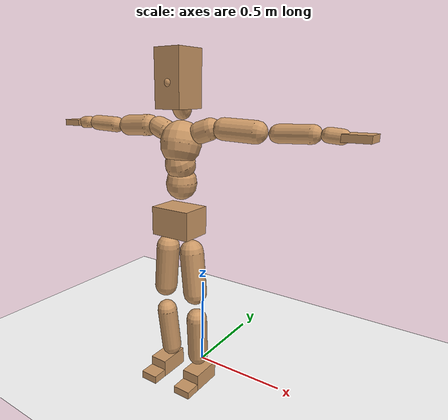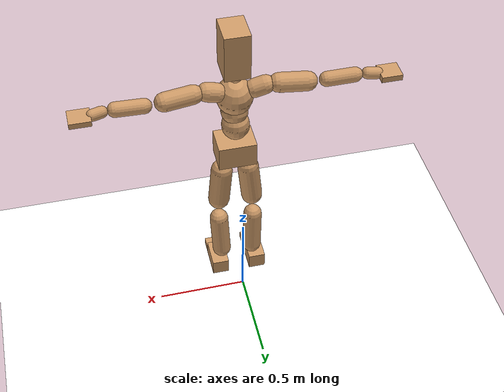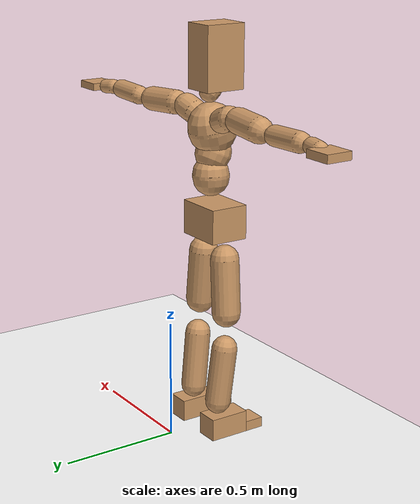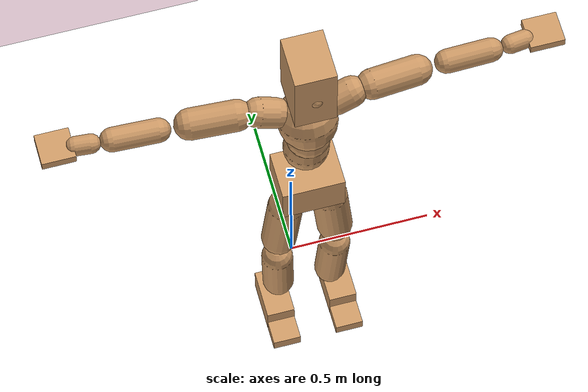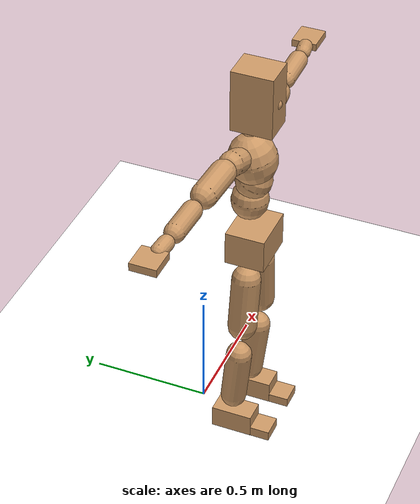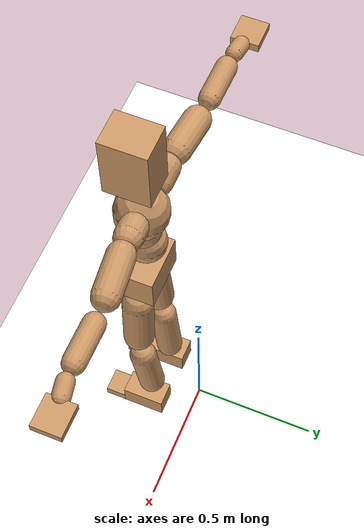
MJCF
<mujoco model="humanoid">
  <option integrator="implicitfast" />

  <visual>
    <global offwidth="1280" offheight="960" />
    <headlight active="1" ambient="0.34 0.34 0.34" diffuse="0.5 0.5 0.5" />
  </visual>

  <default>
    <joint damping="2" stiffness="2" armature="0.01" limited="true" solimplimit="0 .99 .01" />
    <geom condim="1" friction="0.7 0.005 0.0001" solimp=".99 .99 .003" solref="0.015 1" margin="0.001" rgba="0.8 0.6 .4 1" />
    <default class="smplcontact">
      <geom condim="3" friction="1. 0.005 0.0001" solref="0.015 1" solimp="0.98 0.98 0.001" priority="1" />
    </default>
    <default class="stiff_medium">
      <joint stiffness="10" />
    </default>
    <default class="stiff_medium_higher">
      <joint stiffness="50" />
    </default>
    <default class="stiff_high">
      <joint stiffness="100" />
    </default>
  </default>

  <asset>
    <texture type="skybox" builtin="gradient" rgb1="0.99 0.99 0.99" rgb2="0.608 0.828 0.892" width="100" />
    <texture builtin="flat" height="1278" mark="cross" markrgb="1 1 1" name="texgeom" random="0.01" rgb1="0.8 0.6 0.4" rgb2="0.8 0.6 0.4" type="cube" width="127" />
    <texture name="texplane" type="2d" builtin="checker" markrgb="1 1 1" rgb1="0.756 0.772 0.76" rgb2="0.6 0.6 0.6" width="100" height="100" />
    <material name="MatPlane" reflectance="0.5" texture="texplane" texrepeat="1 1" texuniform="true" />
    <material name="geom" texture="texgeom" texuniform="true" />
  </asset>

  <worldbody>
    <light name="tracking_light" pos="0 0 7" dir="0 0 -1" directional="true" cutoff="100" exponent="1" diffuse="1 1 1" specular="0.1 0.1 0.1" mode="trackcom" />
    <camera name="back" pos="0 3 2.4" xyaxes="-1 0 0 0 -1 2" mode="trackcom" />
    <camera name="side" pos="-3 0 2.4" xyaxes="0 -1 0 1 0 2" mode="trackcom" />
    <camera name="front_side" pos="-2.8 -2.8 0.8" xyaxes="0.5 -0.5 0 0.1 0.1 1" mode="trackcom" />
    <geom condim="3" name="floor" pos="0 0 0" rgba="1 1 1 1" size="100 100 .2" type="plane" material="MatPlane" />
    <body name="Pelvis" pos="-0.0018 -0.2233 0.9367" euler="90 0 0">
      <site name="Pelvis" size="0.01" />
      <freejoint name="Pelvis" />
      <geom type="box" pos="-0.0000 -0.0121 -0.0055" size="0.1069 0.0722 0.083" quat="1.0000 0.0000 0.0000 0.0000" density="3165.830099" name="Pelvis" />
      <body name="L_Hip" pos="0.0695 -0.0914 -0.0068">
        <joint name="L_Hip_x" type="hinge" pos="0 0 0" axis="1 0 0" stiffness="10.0" range="-160.0 22.92" class="stiff_medium" damping="15.0" armature="0.01"/>
        <joint name="L_Hip_y" type="hinge" pos="0 0 0" axis="0 1 0" stiffness="10.0" range="-70.0 70.0" class="stiff_medium" damping="10.000000000000004" armature="0.010000000000000009"/>
        <joint name="L_Hip_z" type="hinge" pos="0 0 0" axis="0 0 1" stiffness="10.0" range="-28.65 90.0" class="stiff_medium" damping="9.999999999999998" armature="0.009999999999999998"/>
        <geom type="capsule" density="2040.816327" fromto="0.0069 -0.075 -0.0009 0.0274 -0.3002 -0.0036" size="0.0615" name="L_Hip" />
        <body name="L_Knee" pos="0.0343 -0.3752 -0.0045">
          <joint name="L_Knee_x" type="hinge" pos="0 0 0" axis="1 0 0" range="-5.16 171.89" damping="8.000000000000004" armature="0.010000000000000009" stiffness="2.0"/>
          <joint name="L_Knee_y" type="hinge" pos="0 0 0" axis="0 1 0" range="-4.58 6.88" damping="8.000000000000002" armature="0.010000000000000005" stiffness="2.0"/>
          <joint name="L_Knee_z" type="hinge" pos="0 0 0" axis="0 0 1" range="-6.88 4.58" damping="8.000000000000002" armature="0.010000000000000005" stiffness="2.0"/>
          <geom type="capsule" density="1234.567901" fromto="-0.0027 -0.0796 -0.0087 -0.0109 -0.3184 -0.035" size="0.0541" name="L_Knee" />
          <body name="L_Ankle" pos="-0.0136 -0.398 -0.0437">
            <joint name="L_Ankle_x" type="hinge" pos="0 0 0" axis="1 0 0" range="-45.84 45.84" class="stiff_medium" damping="5.999999999999986" armature="0.009999999999999952" stiffness="10.0"/>
            <joint name="L_Ankle_y" type="hinge" pos="0 0 0" axis="0 1 0" range="-74.48 22.92" class="stiff_medium" damping="3.000000000000001" armature="0.010000000000000005" stiffness="10.0"/>
            <joint name="L_Ankle_z" type="hinge" pos="0 0 0" axis="0 0 1" range="-4.58 4.58" class="stiff_medium" damping="5.999999999999871" armature="0.009999999999999573" stiffness="10.0"/>
            <geom type="box" pos="0.0233 -0.0239 0.0242" size="0.0483 0.0464 0.085" quat="1.0000 0.0000 0.0000 0.0000" density="449.071558" name="L_Ankle" class="smplcontact" />
            <body name="L_Toe" pos="0.0264 -0.0558 0.1193">
              <joint name="L_Toe_x" type="hinge" pos="0 0 0" axis="1 0 0" range="-91.67 22.92" armature="0.009999999999998758" damping="1.9999999999998759" stiffness="2.0"/>
              <joint name="L_Toe_y" type="hinge" pos="0 0 0" axis="0 1 0" range="-4.58 4.58" armature="0.009999999999999976" damping="1.9999999999999976" stiffness="2.0"/>
              <joint name="L_Toe_z" type="hinge" pos="0 0 0" axis="0 0 1" range="-4.58 4.58" armature="0.009999999999999521" damping="1.999999999999952" stiffness="2.0"/>
              <geom type="box" pos="-0.003 0.0055 0.0248" size="0.0478 0.02 0.0496" quat="1.0000 0.0000 0.0000 0.0000" density="423.206892" name="L_Toe" class="smplcontact" />
            </body>
          </body>
        </body>
      </body>
      <body name="R_Hip" pos="-0.0677 -0.0905 -0.0043">
        <joint name="R_Hip_x" type="hinge" pos="0 0 0" axis="1 0 0" stiffness="10.0" range="-160.0 22.92" class="stiff_medium" damping="15.0" armature="0.01"/>
        <joint name="R_Hip_y" type="hinge" pos="0 0 0" axis="0 1 0" stiffness="10.0" range="-70.0 70.0" class="stiff_medium" damping="10.000000000000004" armature="0.010000000000000009"/>
        <joint name="R_Hip_z" type="hinge" pos="0 0 0" axis="0 0 1" stiffness="10.0" range="-90.0 28.65" class="stiff_medium" damping="9.999999999999998" armature="0.009999999999999998"/>
        <geom type="capsule" density="2040.816327" fromto="-0.0077 -0.0765 -0.0018 -0.0306 -0.3061 -0.0071" size="0.0606" name="R_Hip" />
        <body name="R_Knee" pos="-0.0383 -0.3826 -0.0089">
          <joint name="R_Knee_x" type="hinge" pos="0 0 0" axis="1 0 0" range="-5.16 171.89" damping="8.000000000000004" armature="0.010000000000000009" stiffness="2.0"/>
          <joint name="R_Knee_y" type="hinge" pos="0 0 0" axis="0 1 0" range="-6.88 4.58" damping="8.000000000000002" armature="0.010000000000000005" stiffness="2.0"/>
          <joint name="R_Knee_z" type="hinge" pos="0 0 0" axis="0 0 1" range="-4.58 6.88" damping="8.000000000000002" armature="0.010000000000000005" stiffness="2.0"/>
          <geom type="capsule" density="1234.567901" fromto="0.0032 -0.0797 -0.0085 0.0126 -0.3187 -0.0338" size="0.0541" name="R_Knee" />
          <body name="R_Ankle" pos="0.0158 -0.3984 -0.0423">
            <joint name="R_Ankle_x" type="hinge" pos="0 0 0" axis="1 0 0" range="-45.84 45.84" class="stiff_medium" damping="5.999999999999986" armature="0.009999999999999952" stiffness="10.0"/>
            <joint name="R_Ankle_y" type="hinge" pos="0 0 0" axis="0 1 0" range="-22.92 74.48" class="stiff_medium" damping="3.000000000000001" armature="0.010000000000000005" stiffness="10.0"/>
            <joint name="R_Ankle_z" type="hinge" pos="0 0 0" axis="0 0 1" range="-4.58 4.58" class="stiff_medium" damping="5.999999999999871" armature="0.009999999999999573" stiffness="10.0"/>
            <geom type="box" pos="-0.0212 -0.0174 0.0256" size="0.0483 0.0478 0.0865" quat="1.0000 0.0000 0.0000 0.0000" density="434.700981" name="R_Ankle" class="smplcontact" />
            <body name="R_Toe" pos="-0.0254 -0.0481 0.1233">
              <joint name="R_Toe_x" type="hinge" pos="0 0 0" axis="1 0 0" range="-91.67 22.92" armature="0.009999999999998758" damping="1.9999999999998759" stiffness="2.0"/>
              <joint name="R_Toe_y" type="hinge" pos="0 0 0" axis="0 1 0" range="-4.58 4.58" armature="0.009999999999999976" damping="1.9999999999999976" stiffness="2.0"/>
              <joint name="R_Toe_z" type="hinge" pos="0 0 0" axis="0 0 1" range="-4.58 4.58" armature="0.009999999999999521" damping="1.999999999999952" stiffness="2.0"/>
              <geom type="box" pos="0.0042 0.0045 0.0227" size="0.0479 0.0216 0.0493" quat="1.0000 0.0000 0.0000 0.0000" density="407.384095" name="R_Toe" class="smplcontact" />
            </body>
          </body>
        </body>
      </body>
      <body name="Torso" pos="-0.0025 0.109 -0.0267">
        <joint name="Torso_x" type="hinge" pos="0 0 0" axis="1 0 0" range="-25.78 57.3" class="stiff_medium" damping="17.705076836727518" armature="0.012154356467519136" stiffness="11.462547391304348"/>
        <joint name="Torso_y" type="hinge" pos="0 0 0" axis="0 1 0" range="-57.3 57.3" class="stiff_high" damping="21.610363964192025" armature="0.01008808532975007" stiffness="115.7325239130435"/>
        <joint name="Torso_z" type="hinge" pos="0 0 0" axis="0 0 1" range="-34.38 34.38" class="stiff_high" damping="22.70382040419674" armature="0.011452161778605306" stiffness="112.5253622222222"/>
        <geom type="capsule" density="2040.816327" fromto="0.0025 0.0608 0.0005 0.003 0.0743 0.0006" size="0.0769" name="Torso" />
        <body name="Spine" pos="0.0055 0.1352 0.0011">
          <joint name="Spine_x" type="hinge" pos="0 0 0" axis="1 0 0" stiffness="11.764195434782607" range="-25.78 57.3" class="stiff_medium" damping="18.527554351002824" armature="0.012968550666482795"/>
          <joint name="Spine_y" type="hinge" pos="0 0 0" axis="0 1 0" stiffness="11.722002173913042" range="-57.3 57.3" class="stiff_high" damping="8.699317843395352" armature="0.01008761795468324"/>
          <joint name="Spine_z" type="hinge" pos="0 0 0" axis="0 0 1" stiffness="23.335403478260876" range="-34.38 34.38" class="stiff_high" damping="13.835179854161925" armature="0.011392572673684813"/>
          <geom type="capsule" density="2040.816327" fromto="0.0007 0.0238 0.0114 0.0008 0.0291 0.014" size="0.0755" name="Spine" />
          <body name="Chest" pos="0.0015 0.0529 0.0254">
            <joint name="Chest_x" type="hinge" pos="0 0 0" axis="1 0 0" stiffness="12.248477608695653" range="-25.78 57.3" class="stiff_medium" damping="19.201286186604587" armature="0.013378148443277036"/>
            <joint name="Chest_y" type="hinge" pos="0 0 0" axis="0 1 0" stiffness="11.604361219512194" range="-57.3 57.3" class="stiff_high" damping="8.652552639389942" armature="0.010080621005490082"/>
            <joint name="Chest_z" type="hinge" pos="0 0 0" axis="0 0 1" stiffness="24.22878222222222" range="-34.38 34.38" class="stiff_high" damping="14.030943153528938" armature="0.011285210061548041"/>
            <geom type="capsule" density="2040.816327" fromto="-0.0009 0.0682 -0.0173 -0.001 0.0833 -0.0212" size="0.1002" name="Chest" />
            <body name="Neck" pos="-0.0028 0.2139 -0.0429">
              <joint name="Neck_x" type="hinge" pos="0 0 0" axis="1 0 0" range="-28.65 57.3" class="stiff_medium_higher" damping="15.466604435927225" armature="0.01611478219585472" stiffness="74.2224902173913"/>
              <joint name="Neck_y" type="hinge" pos="0 0 0" axis="0 1 0" range="-40.11 40.11" class="stiff_medium_higher" damping="16.394529800966865" armature="0.01803031927823758" stiffness="74.53573152173914"/>
              <joint name="Neck_z" type="hinge" pos="0 0 0" axis="0 0 1" range="-40.11 40.11" class="stiff_medium_higher" damping="15.560711690532925" armature="0.016095738935980625" stiffness="75.2173445652174"/>
              <geom type="capsule" density="1000" fromto="0.001 0.013 0.0103 0.0041 0.052 0.0411" size="0.0436" name="Neck" />
              <body name="Head" pos="0.0052 0.065 0.0513">
                <joint name="Head_x" type="hinge" pos="0 0 0" axis="1 0 0" range="-28.65 57.3" class="stiff_medium_higher" damping="3.2545611266266454" armature="0.01741130620029473" stiffness="76.04375"/>
                <joint name="Head_y" type="hinge" pos="0 0 0" axis="0 1 0" range="-40.11 40.11" class="stiff_medium_higher" damping="3.4782957981698597" armature="0.019887468824798388" stiffness="76.04375"/>
                <joint name="Head_z" type="hinge" pos="0 0 0" axis="0 0 1" range="-40.11 40.11" class="stiff_medium_higher" damping="3.243082048817527" armature="0.017288700871804865" stiffness="76.04375"/>
                <geom type="box" pos="-0.0042 0.0876 -0.0116" size="0.06969 0.13271 0.0874" quat="1.0000 0.0000 0.0000 0.0000" density="1018.069894" name="Head" />
                <geom type="capsule" name="nose" size="0.023 0.0115" pos="0 0.07 0.05" quat="1 0 0 0" mass="0" contype="0" conaffinity="0" />
              </body>
            </body>
            <body name="L_Thorax" pos="0.0788 0.1217 -0.0341">
              <joint name="L_Thorax_x" type="hinge" pos="0 0 0" axis="1 0 0" range="-10.89 4.58" class="stiff_medium_higher" damping="19.99999999999997" armature="0.00999999999999997" stiffness="50.0"/>
              <joint name="L_Thorax_y" type="hinge" pos="0 0 0" axis="0 1 0" range="-28.65 17.19" class="stiff_medium_higher" damping="20.0" armature="0.010000000000000002" stiffness="50.0"/>
              <joint name="L_Thorax_z" type="hinge" pos="0 0 0" axis="0 0 1" range="-31.51 40.11" class="stiff_medium_higher" damping="19.999999999999996" armature="0.009999999999999998" stiffness="50.0"/>
              <geom type="capsule" density="1000" fromto="0.0182 0.0061 -0.0018 0.0728 0.0244 -0.0071" size="0.0521" name="L_Thorax" />
              <body name="L_Shoulder" pos="0.091 0.0305 -0.0089">
                <joint name="L_Shoulder_x" type="hinge" pos="0 0 0" axis="1 0 0" range="-97.4 97.4" class="stiff_medium" damping="5.999999999999992" armature="0.009999999999999974" stiffness="10.0"/>
                <joint name="L_Shoulder_y" type="hinge" pos="0 0 0" axis="0 1 0" range="-108.86 80.21" class="stiff_medium" damping="6.0" armature="0.01" stiffness="10.0"/>
                <joint name="L_Shoulder_z" type="hinge" pos="0 0 0" axis="0 0 1" range="-97.4 85.94" class="stiff_medium" damping="6.000000000000002" armature="0.010000000000000005" stiffness="10.0"/>
                <geom type="capsule" density="1000" fromto="0.0519 -0.0026 -0.0055 0.2077 -0.0102 -0.022" size="0.0517" name="L_Shoulder" />
                <body name="L_Elbow" pos="0.2596 -0.0128 -0.0275">
                  <joint name="L_Elbow_x" type="hinge" pos="0 0 0" axis="1 0 0" range="-17.19 4.58" damping="4.99999999999993" armature="0.009999999999999721" stiffness="2.0"/>
                  <joint name="L_Elbow_y" type="hinge" pos="0 0 0" axis="0 1 0" range="-180.0 17.19" damping="5.0000000000000036" armature="0.010000000000000014" stiffness="2.0"/>
                  <joint name="L_Elbow_z" type="hinge" pos="0 0 0" axis="0 0 1" range="-100.84 4.58" damping="5.000000000000001" armature="0.010000000000000005" stiffness="2.0"/>
                  <geom type="capsule" density="1000" fromto="0.0498 0.0018 -0.0002 0.1994 0.0072 -0.0009" size="0.0405" name="L_Elbow" />
                  <body name="L_Wrist" pos="0.2492 0.009 -0.0012">
                    <joint name="L_Wrist_x" type="hinge" pos="0 0 0" axis="1 0 0" range="-180.0 22.92" armature="0.01000000000000015" damping="2.0000000000000147" stiffness="2.0"/>
                    <joint name="L_Wrist_y" type="hinge" pos="0 0 0" axis="0 1 0" range="-17.19 17.19" armature="0.010000000000000026" damping="2.0000000000000027" stiffness="2.0"/>
                    <joint name="L_Wrist_z" type="hinge" pos="0 0 0" axis="0 0 1" range="-22.92 22.92" armature="0.010000000000000023" damping="2.000000000000002" stiffness="2.0"/>
                    <geom type="capsule" density="1000" fromto="0.0168 -0.0016 -0.003 0.0672 -0.0065 -0.012" size="0.0318" name="L_Wrist" class="smplcontact" />
                    <body name="L_Hand" pos="0.084 -0.0082 -0.0149">
                      <joint name="L_Hand_x" type="hinge" pos="0 0 0" axis="1 0 0" range="-17.19 17.19" armature="0.009999999999999825" damping="1.9999999999999825" stiffness="2.0"/>
                      <joint name="L_Hand_y" type="hinge" pos="0 0 0" axis="0 1 0" range="-51.57 51.57" armature="0.010000000000000196" damping="2.0000000000000195" stiffness="2.0"/>
                      <joint name="L_Hand_z" type="hinge" pos="0 0 0" axis="0 0 1" range="-91.67 91.67" armature="0.010000000000000182" damping="2.000000000000018" stiffness="2.0"/>
                      <geom type="box" pos="0.0493 0.001 -0.0058" size="0.0585 0.0158 0.0538" quat="1.0000 0.0000 0.0000 0.0000" density="400.552564" name="L_Hand" class="smplcontact" />
                    </body>
                  </body>
                </body>
              </body>
            </body>
            <body name="R_Thorax" pos="-0.0818 0.1188 -0.0386">
              <joint name="R_Thorax_x" type="hinge" pos="0 0 0" axis="1 0 0" range="-10.89 4.58" class="stiff_medium_higher" damping="19.99999999999997" armature="0.00999999999999997" stiffness="50.0"/>
              <joint name="R_Thorax_y" type="hinge" pos="0 0 0" axis="0 1 0" range="-17.19 28.65" class="stiff_medium_higher" damping="20.0" armature="0.010000000000000002" stiffness="50.0"/>
              <joint name="R_Thorax_z" type="hinge" pos="0 0 0" axis="0 0 1" range="-40.11 31.51" class="stiff_medium_higher" damping="19.999999999999996" armature="0.009999999999999998" stiffness="50.0"/>
              <geom type="capsule" density="1000" fromto="-0.0192 0.0065 -0.0018 -0.0768 0.026 -0.0073" size="0.0511" name="R_Thorax" />
              <body name="R_Shoulder" pos="-0.096 0.0326 -0.0091">
                <joint name="R_Shoulder_x" type="hinge" pos="0 0 0" axis="1 0 0" range="-97.4 97.4" class="stiff_medium" damping="5.999999999999992" armature="0.009999999999999974" stiffness="10.0"/>
                <joint name="R_Shoulder_y" type="hinge" pos="0 0 0" axis="0 1 0" range="-80.21 108.86" class="stiff_medium" damping="6.0" armature="0.01" stiffness="10.0"/>
                <joint name="R_Shoulder_z" type="hinge" pos="0 0 0" axis="0 0 1" range="-85.94 97.4" class="stiff_medium" damping="6.000000000000002" armature="0.010000000000000005" stiffness="10.0"/>
                <geom type="capsule" density="1000" fromto="-0.0507 -0.0027 -0.0043 -0.203 -0.0107 -0.0171" size="0.0531" name="R_Shoulder" />
                <body name="R_Elbow" pos="-0.2537 -0.0133 -0.0214">
                  <joint name="R_Elbow_x" type="hinge" pos="0 0 0" axis="1 0 0" range="-17.19 4.58" damping="4.99999999999993" armature="0.009999999999999721" stiffness="2.0"/>
                  <joint name="R_Elbow_y" type="hinge" pos="0 0 0" axis="0 1 0" range="-17.19 180.0" damping="5.0000000000000036" armature="0.010000000000000014" stiffness="2.0"/>
                  <joint name="R_Elbow_z" type="hinge" pos="0 0 0" axis="0 0 1" range="-4.58 100.84" damping="5.000000000000001" armature="0.010000000000000005" stiffness="2.0"/>
                  <geom type="capsule" density="1000" fromto="-0.0511 0.0016 -0.0011 -0.2042 0.0062 -0.0044" size="0.0408" name="R_Elbow" />
                  <body name="R_Wrist" pos="-0.2553 0.0078 -0.0056">
                    <joint name="R_Wrist_x" type="hinge" pos="0 0 0" axis="1 0 0" range="-180.0 22.92" armature="0.01000000000000015" damping="2.0000000000000147" stiffness="2.0"/>
                    <joint name="R_Wrist_y" type="hinge" pos="0 0 0" axis="0 1 0" range="-17.19 17.19" armature="0.010000000000000026" damping="2.0000000000000027" stiffness="2.0"/>
                    <joint name="R_Wrist_z" type="hinge" pos="0 0 0" axis="0 0 1" range="-22.92 22.92" armature="0.010000000000000023" damping="2.000000000000002" stiffness="2.0"/>
                    <geom type="capsule" density="1000" fromto="-0.0169 -0.0012 -0.0021 -0.0677 -0.0049 -0.0083" size="0.0326" name="R_Wrist" class="smplcontact" />
                    <body name="R_Hand" pos="-0.0846 -0.0061 -0.0103">
                      <joint name="R_Hand_x" type="hinge" pos="0 0 0" axis="1 0 0" range="-17.19 17.19" armature="0.009999999999999825" damping="1.9999999999999825" stiffness="2.0"/>
                      <joint name="R_Hand_y" type="hinge" pos="0 0 0" axis="0 1 0" range="-51.57 51.57" armature="0.010000000000000196" damping="2.0000000000000195" stiffness="2.0"/>
                      <joint name="R_Hand_z" type="hinge" pos="0 0 0" axis="0 0 1" range="-91.67 91.67" armature="0.010000000000000182" damping="2.000000000000018" stiffness="2.0"/>
                      <geom type="box" pos="-0.0462 -0.0009 -0.0079" size="0.0569 0.0164 0.0546" quat="1.0000 0.0000 0.0000 0.0000" density="403.679611" name="R_Hand" class="smplcontact" />
                    </body>
                  </body>
                </body>
              </body>
            </body>
          </body>
        </body>
      </body>
    </body>
  </worldbody>
  <actuator>
    <general name="L_Hip_x" joint="L_Hip_x" biastype="affine" gainprm="287.33006409732246" biasprm="-215.3247604770444 -180.0 -2.0" ctrllimited="true" ctrlrange="-1 1" forcerange="-360.0 360.0" />
    <general name="L_Hip_y" joint="L_Hip_y" biastype="affine" gainprm="219.9114857512855" biasprm="0.0 -180.0 -2.000000000000001" ctrllimited="true" ctrlrange="-1 1" forcerange="-360.0 360.0" />
    <general name="L_Hip_z" joint="L_Hip_z" biastype="affine" gainprm="186.3749841742145" biasprm="96.3683546488669 -180.0 -1.9999999999999998" ctrllimited="true" ctrlrange="-1 1" forcerange="-360.0 360.0" />
    <general name="L_Knee_x" joint="L_Knee_x" biastype="affine" gainprm="278.10948965903646" biasprm="261.8988715665131 -180.0 -2.000000000000001" ctrllimited="true" ctrlrange="-1 1" forcerange="-360.0 360.0" />
    <general name="L_Knee_y" joint="L_Knee_y" biastype="affine" gainprm="18.001325905069514" biasprm="3.612831551628262 -180.0 -2.0000000000000004" ctrllimited="true" ctrlrange="-1 1" forcerange="-360.0 360.0" />
    <general name="L_Knee_z" joint="L_Knee_z" biastype="affine" gainprm="18.001325905069514" biasprm="-3.612831551628262 -180.0 -2.0000000000000004" ctrllimited="true" ctrlrange="-1 1" forcerange="-360.0 360.0" />
    <general name="L_Ankle_x" joint="L_Ankle_x" biastype="affine" gainprm="72.00530362027807" biasprm="0.0 -90.0 -1.9999999999999951" ctrllimited="true" ctrlrange="-1 1" forcerange="-180.0 180.0" />
    <general name="L_Ankle_y" joint="L_Ankle_y" biastype="affine" gainprm="76.49778111491148" biasprm="-40.49512930477244 -90.0 -2.0000000000000004" ctrllimited="true" ctrlrange="-1 1" forcerange="-180.0 180.0" />
    <general name="L_Ankle_z" joint="L_Ankle_z" biastype="affine" gainprm="7.1942471767206255" biasprm="0.0 -90.0 -1.9999999999999571" ctrllimited="true" ctrlrange="-1 1" forcerange="-180.0 180.0" />
    <general name="L_Toe_x" joint="L_Toe_x" biastype="affine" gainprm="71.99902043497087" biasprm="-43.19689898685965 -72.0 -0.7999999999999504" ctrllimited="true" ctrlrange="-1 1" forcerange="-144.0 144.0" />
    <general name="L_Toe_y" joint="L_Toe_y" biastype="affine" gainprm="5.755397741376501" biasprm="0.0 -72.0 -0.799999999999999" ctrllimited="true" ctrlrange="-1 1" forcerange="-144.0 144.0" />
    <general name="L_Toe_z" joint="L_Toe_z" biastype="affine" gainprm="5.755397741376501" biasprm="0.0 -72.0 -0.7999999999999808" ctrllimited="true" ctrlrange="-1 1" forcerange="-144.0 144.0" />
    <general name="R_Hip_x" joint="R_Hip_x" biastype="affine" gainprm="287.33006409732246" biasprm="-215.3247604770444 -180.0 -2.0" ctrllimited="true" ctrlrange="-1 1" forcerange="-360.0 360.0" />
    <general name="R_Hip_y" joint="R_Hip_y" biastype="affine" gainprm="219.9114857512855" biasprm="0.0 -180.0 -2.000000000000001" ctrllimited="true" ctrlrange="-1 1" forcerange="-360.0 360.0" />
    <general name="R_Hip_z" joint="R_Hip_z" biastype="affine" gainprm="186.3749841742145" biasprm="-96.3683546488669 -180.0 -1.9999999999999998" ctrllimited="true" ctrlrange="-1 1" forcerange="-360.0 360.0" />
    <general name="R_Knee_x" joint="R_Knee_x" biastype="affine" gainprm="278.10948965903646" biasprm="261.8988715665131 -180.0 -2.000000000000001" ctrllimited="true" ctrlrange="-1 1" forcerange="-360.0 360.0" />
    <general name="R_Knee_y" joint="R_Knee_y" biastype="affine" gainprm="18.001325905069514" biasprm="-3.612831551628262 -180.0 -2.0000000000000004" ctrllimited="true" ctrlrange="-1 1" forcerange="-360.0 360.0" />
    <general name="R_Knee_z" joint="R_Knee_z" biastype="affine" gainprm="18.001325905069514" biasprm="3.612831551628262 -180.0 -2.0000000000000004" ctrllimited="true" ctrlrange="-1 1" forcerange="-360.0 360.0" />
    <general name="R_Ankle_x" joint="R_Ankle_x" biastype="affine" gainprm="72.00530362027807" biasprm="0.0 -90.0 -1.9999999999999951" ctrllimited="true" ctrlrange="-1 1" forcerange="-180.0 180.0" />
    <general name="R_Ankle_y" joint="R_Ankle_y" biastype="affine" gainprm="76.49778111491148" biasprm="40.49512930477244 -90.0 -2.0000000000000004" ctrllimited="true" ctrlrange="-1 1" forcerange="-180.0 180.0" />
    <general name="R_Ankle_z" joint="R_Ankle_z" biastype="affine" gainprm="7.1942471767206255" biasprm="0.0 -90.0 -1.9999999999999571" ctrllimited="true" ctrlrange="-1 1" forcerange="-180.0 180.0" />
    <general name="R_Toe_x" joint="R_Toe_x" biastype="affine" gainprm="71.99902043497087" biasprm="-43.19689898685965 -72.0 -0.7999999999999504" ctrllimited="true" ctrlrange="-1 1" forcerange="-144.0 144.0" />
    <general name="R_Toe_y" joint="R_Toe_y" biastype="affine" gainprm="5.755397741376501" biasprm="0.0 -72.0 -0.799999999999999" ctrllimited="true" ctrlrange="-1 1" forcerange="-144.0 144.0" />
    <general name="R_Toe_z" joint="R_Toe_z" biastype="affine" gainprm="5.755397741376501" biasprm="0.0 -72.0 -0.7999999999999808" ctrllimited="true" ctrlrange="-1 1" forcerange="-144.0 144.0" />
    <general name="Torso_x" joint="Torso_x" biastype="affine" gainprm="199.4510126985095" biasprm="75.67038902572241 -275.10113739130435 -4.721353823127338" ctrllimited="true" ctrlrange="-1 1" forcerange="-412.6517060869565 412.6517060869565" />
    <general name="Torso_y" joint="Torso_y" biastype="affine" gainprm="277.77851743665957" biasprm="0.0 -277.75805739130436 -4.322072792838405" ctrllimited="true" ctrlrange="-1 1" forcerange="-416.6370860869566 416.6370860869566" />
    <general name="Torso_z" joint="Torso_z" biastype="affine" gainprm="162.04845743585756" biasprm="0.0 -270.0608693333333 -4.540764080839348" ctrllimited="true" ctrlrange="-1 1" forcerange="-405.0913039999999 405.0913039999999" />
    <general name="Spine_x" joint="Spine_x" biastype="affine" gainprm="204.69975939471982" biasprm="77.6617286485504 -282.3406904347826 -4.940681160267419" ctrllimited="true" ctrlrange="-1 1" forcerange="-423.51103565217386 423.51103565217386" />
    <general name="Spine_y" joint="Spine_y" biastype="affine" gainprm="281.348775190056" biasprm="0.0 -281.328052173913 -4.349658921697676" ctrllimited="true" ctrlrange="-1 1" forcerange="-421.9920782608695 421.9920782608695" />
    <general name="Spine_z" joint="Spine_z" biastype="affine" gainprm="168.02728125538673" biasprm="0.0 -280.0248417391305 -4.611726618053975" ctrllimited="true" ctrlrange="-1 1" forcerange="-420.03726260869576 420.03726260869576" />
    <general name="Chest_x" joint="Chest_x" biastype="affine" gainprm="213.12638279015005" biasprm="80.85873357661926 -293.9634626086957 -5.120342983094557" ctrllimited="true" ctrlrange="-1 1" forcerange="-440.9451939130435 440.9451939130435" />
    <general name="Chest_y" joint="Chest_y" biastype="affine" gainprm="278.52518431011856" biasprm="0.0 -278.5046692682927 -4.326276319694971" ctrllimited="true" ctrlrange="-1 1" forcerange="-417.75700390243895 417.75700390243895" />
    <general name="Chest_z" joint="Chest_z" biastype="affine" gainprm="174.46008202607067" biasprm="0.0 -290.74538666666666 -4.676981051176313" ctrllimited="true" ctrlrange="-1 1" forcerange="-436.11808 436.11808" />
    <general name="Neck_x" joint="Neck_x" biastype="affine" gainprm="40.083097076672836" biasprm="13.361032358890947 -53.440192956521734 -1.237328354874178" ctrllimited="true" ctrlrange="-1 1" forcerange="-106.88038591304347 106.88038591304347" />
    <general name="Neck_y" joint="Neck_y" biastype="affine" gainprm="37.568775851476495" biasprm="0.0 -53.665726695652175 -1.3115623840773494" ctrllimited="true" ctrlrange="-1 1" forcerange="-107.33145339130435 107.33145339130435" />
    <general name="Neck_z" joint="Neck_z" biastype="affine" gainprm="37.912334130506856" biasprm="0.0 -54.15648808695653 -1.244856935242634" ctrllimited="true" ctrlrange="-1 1" forcerange="-108.31297617391306 108.31297617391306" />
    <general name="Head_x" joint="Head_x" biastype="affine" gainprm="27.377766535872595" biasprm="9.125922178624199 -36.501 -1.3018244506506582" ctrllimited="true" ctrlrange="-1 1" forcerange="-73.002 73.002" />
    <general name="Head_y" joint="Head_y" biastype="affine" gainprm="25.552582100147756" biasprm="0.0 -36.501 -1.391318319267944" ctrllimited="true" ctrlrange="-1 1" forcerange="-73.002 73.002" />
    <general name="Head_z" joint="Head_z" biastype="affine" gainprm="25.552582100147756" biasprm="0.0 -36.501 -1.2972328195270109" ctrllimited="true" ctrlrange="-1 1" forcerange="-73.002 73.002" />
    <general name="L_Thorax_x" joint="L_Thorax_x" biastype="affine" gainprm="16.200146117011364" biasprm="-6.6078165480505335 -120.0 -1.5999999999999979" ctrllimited="true" ctrlrange="-1 1" forcerange="-240.0 240.0" />
    <general name="L_Thorax_y" joint="L_Thorax_y" biastype="affine" gainprm="48.00353574685204" biasprm="-12.00088393671301 -120.0 -1.6" ctrllimited="true" ctrlrange="-1 1" forcerange="-240.0 240.0" />
    <general name="L_Thorax_z" joint="L_Thorax_z" biastype="affine" gainprm="75.00028861670033" biasprm="9.00589894029074 -120.0 -1.5999999999999999" ctrllimited="true" ctrlrange="-1 1" forcerange="-240.0 240.0" />
    <general name="L_Shoulder_x" joint="L_Shoulder_x" biastype="affine" gainprm="81.5976331892389" biasprm="0.0 -48.0 -1.5999999999999979" ctrllimited="true" ctrlrange="-1 1" forcerange="-96.0 96.0" />
    <general name="L_Shoulder_y" joint="L_Shoulder_y" biastype="affine" gainprm="79.19745640189629" biasprm="-12.00088393671301 -48.0 -1.6" ctrllimited="true" ctrlrange="-1 1" forcerange="-96.0 96.0" />
    <general name="L_Shoulder_z" joint="L_Shoulder_z" biastype="affine" gainprm="76.79727961455369" biasprm="-4.800353574685214 -48.0 -1.6000000000000005" ctrllimited="true" ctrlrange="-1 1" forcerange="-96.0 96.0" />
    <general name="L_Elbow_x" joint="L_Elbow_x" biastype="affine" gainprm="13.67849441372996" biasprm="-7.923096672353461 -72.0 -0.7999999999999888" ctrllimited="true" ctrlrange="-1 1" forcerange="-144.0 144.0" />
    <general name="L_Elbow_y" joint="L_Elbow_y" biastype="affine" gainprm="123.89813107227425" biasprm="-102.29653998619085 -72.0 -0.8000000000000006" ctrllimited="true" ctrlrange="-1 1" forcerange="-144.0 144.0" />
    <general name="L_Elbow_z" joint="L_Elbow_z" biastype="affine" gainprm="66.23733950828719" biasprm="-60.4819417669107 -72.0 -0.8000000000000003" ctrllimited="true" ctrlrange="-1 1" forcerange="-144.0 144.0" />
    <general name="L_Wrist_x" joint="L_Wrist_x" biastype="affine" gainprm="21.24973270888136" biasprm="-16.449379134196157 -12.0 -0.8000000000000059" ctrllimited="true" ctrlrange="-1 1" forcerange="-24.0 24.0" />
    <general name="L_Wrist_y" joint="L_Wrist_y" biastype="affine" gainprm="3.6002651810139037" biasprm="0.0 -12.0 -0.8000000000000012" ctrllimited="true" ctrlrange="-1 1" forcerange="-24.0 24.0" />
    <general name="L_Wrist_z" joint="L_Wrist_z" biastype="affine" gainprm="4.800353574685205" biasprm="0.0 -12.0 -0.8000000000000009" ctrllimited="true" ctrlrange="-1 1" forcerange="-24.0 24.0" />
    <general name="L_Hand_x" joint="L_Hand_x" biastype="affine" gainprm="3.6002651810139037" biasprm="0.0 -12.0 -0.799999999999993" ctrllimited="true" ctrlrange="-1 1" forcerange="-24.0 24.0" />
    <general name="L_Hand_y" joint="L_Hand_y" biastype="affine" gainprm="10.800795543041708" biasprm="0.0 -12.0 -0.8000000000000078" ctrllimited="true" ctrlrange="-1 1" forcerange="-24.0 24.0" />
    <general name="L_Hand_z" joint="L_Hand_z" biastype="affine" gainprm="19.199319903638422" biasprm="0.0 -12.0 -0.8000000000000074" ctrllimited="true" ctrlrange="-1 1" forcerange="-24.0 24.0" />
    <general name="R_Thorax_x" joint="R_Thorax_x" biastype="affine" gainprm="16.200146117011364" biasprm="-6.6078165480505335 -120.0 -1.5999999999999979" ctrllimited="true" ctrlrange="-1 1" forcerange="-240.0 240.0" />
    <general name="R_Thorax_y" joint="R_Thorax_y" biastype="affine" gainprm="48.00353574685204" biasprm="12.000883936713002 -120.0 -1.6" ctrllimited="true" ctrlrange="-1 1" forcerange="-240.0 240.0" />
    <general name="R_Thorax_z" joint="R_Thorax_z" biastype="affine" gainprm="75.00028861670033" biasprm="-9.00589894029074 -120.0 -1.5999999999999999" ctrllimited="true" ctrlrange="-1 1" forcerange="-240.0 240.0" />
    <general name="R_Shoulder_x" joint="R_Shoulder_x" biastype="affine" gainprm="81.5976331892389" biasprm="0.0 -48.0 -1.5999999999999979" ctrllimited="true" ctrlrange="-1 1" forcerange="-96.0 96.0" />
    <general name="R_Shoulder_y" joint="R_Shoulder_y" biastype="affine" gainprm="79.19745640189629" biasprm="12.00088393671301 -48.0 -1.6" ctrllimited="true" ctrlrange="-1 1" forcerange="-96.0 96.0" />
    <general name="R_Shoulder_z" joint="R_Shoulder_z" biastype="affine" gainprm="76.79727961455369" biasprm="4.800353574685204 -48.0 -1.6000000000000005" ctrllimited="true" ctrlrange="-1 1" forcerange="-96.0 96.0" />
    <general name="R_Elbow_x" joint="R_Elbow_x" biastype="affine" gainprm="13.67849441372996" biasprm="-7.923096672353461 -72.0 -0.7999999999999888" ctrllimited="true" ctrlrange="-1 1" forcerange="-144.0 144.0" />
    <general name="R_Elbow_y" joint="R_Elbow_y" biastype="affine" gainprm="123.89813107227425" biasprm="102.29653998619085 -72.0 -0.8000000000000006" ctrllimited="true" ctrlrange="-1 1" forcerange="-144.0 144.0" />
    <general name="R_Elbow_z" joint="R_Elbow_z" biastype="affine" gainprm="66.23733950828719" biasprm="60.481941766910694 -72.0 -0.8000000000000003" ctrllimited="true" ctrlrange="-1 1" forcerange="-144.0 144.0" />
    <general name="R_Wrist_x" joint="R_Wrist_x" biastype="affine" gainprm="21.24973270888136" biasprm="-16.449379134196157 -12.0 -0.8000000000000059" ctrllimited="true" ctrlrange="-1 1" forcerange="-24.0 24.0" />
    <general name="R_Wrist_y" joint="R_Wrist_y" biastype="affine" gainprm="3.6002651810139037" biasprm="0.0 -12.0 -0.8000000000000012" ctrllimited="true" ctrlrange="-1 1" forcerange="-24.0 24.0" />
    <general name="R_Wrist_z" joint="R_Wrist_z" biastype="affine" gainprm="4.800353574685205" biasprm="0.0 -12.0 -0.8000000000000009" ctrllimited="true" ctrlrange="-1 1" forcerange="-24.0 24.0" />
    <general name="R_Hand_x" joint="R_Hand_x" biastype="affine" gainprm="3.6002651810139037" biasprm="0.0 -12.0 -0.799999999999993" ctrllimited="true" ctrlrange="-1 1" forcerange="-24.0 24.0" />
    <general name="R_Hand_y" joint="R_Hand_y" biastype="affine" gainprm="10.800795543041708" biasprm="0.0 -12.0 -0.8000000000000078" ctrllimited="true" ctrlrange="-1 1" forcerange="-24.0 24.0" />
    <general name="R_Hand_z" joint="R_Hand_z" biastype="affine" gainprm="19.199319903638422" biasprm="0.0 -12.0 -0.8000000000000074" ctrllimited="true" ctrlrange="-1 1" forcerange="-24.0 24.0" />
  </actuator>
  <contact>
    <exclude body1="Torso" body2="Chest" />
    <exclude body1="Head" body2="Chest" />
    <exclude body1="R_Knee" body2="R_Toe" />
    <exclude body1="R_Knee" body2="L_Ankle" />
    <exclude body1="R_Knee" body2="L_Toe" />
    <exclude body1="L_Knee" body2="L_Toe" />
    <exclude body1="L_Knee" body2="R_Ankle" />
    <exclude body1="L_Knee" body2="R_Toe" />
    <exclude body1="L_Shoulder" body2="Chest" />
    <exclude body1="R_Shoulder" body2="Chest" />
  </contact>
  <sensor>
    <framelinvel name="sensor_Pelvis_framelinvel" objtype="xbody" objname="Pelvis" />
    <framelinvel name="sensor_L_Hip_framelinvel" objtype="xbody" objname="L_Hip" />
    <framelinvel name="sensor_L_Knee_framelinvel" objtype="xbody" objname="L_Knee" />
    <framelinvel name="sensor_L_Ankle_framelinvel" objtype="xbody" objname="L_Ankle" />
    <framelinvel name="sensor_L_Toe_framelinvel" objtype="xbody" objname="L_Toe" />
    <framelinvel name="sensor_R_Hip_framelinvel" objtype="xbody" objname="R_Hip" />
    <framelinvel name="sensor_R_Knee_framelinvel" objtype="xbody" objname="R_Knee" />
    <framelinvel name="sensor_R_Ankle_framelinvel" objtype="xbody" objname="R_Ankle" />
    <framelinvel name="sensor_R_Toe_framelinvel" objtype="xbody" objname="R_Toe" />
    <framelinvel name="sensor_Torso_framelinvel" objtype="xbody" objname="Torso" />
    <framelinvel name="sensor_Spine_framelinvel" objtype="xbody" objname="Spine" />
    <framelinvel name="sensor_Chest_framelinvel" objtype="xbody" objname="Chest" />
    <framelinvel name="sensor_Neck_framelinvel" objtype="xbody" objname="Neck" />
    <framelinvel name="sensor_Head_framelinvel" objtype="xbody" objname="Head" />
    <framelinvel name="sensor_L_Thorax_framelinvel" objtype="xbody" objname="L_Thorax" />
    <framelinvel name="sensor_L_Shoulder_framelinvel" objtype="xbody" objname="L_Shoulder" />
    <framelinvel name="sensor_L_Elbow_framelinvel" objtype="xbody" objname="L_Elbow" />
    <framelinvel name="sensor_L_Wrist_framelinvel" objtype="xbody" objname="L_Wrist" />
    <framelinvel name="sensor_L_Hand_framelinvel" objtype="xbody" objname="L_Hand" />
    <framelinvel name="sensor_R_Thorax_framelinvel" objtype="xbody" objname="R_Thorax" />
    <framelinvel name="sensor_R_Shoulder_framelinvel" objtype="xbody" objname="R_Shoulder" />
    <framelinvel name="sensor_R_Elbow_framelinvel" objtype="xbody" objname="R_Elbow" />
    <framelinvel name="sensor_R_Wrist_framelinvel" objtype="xbody" objname="R_Wrist" />
    <framelinvel name="sensor_R_Hand_framelinvel" objtype="xbody" objname="R_Hand" />
    <frameangvel name="sensor_Pelvis_frameangvel" objtype="xbody" objname="Pelvis" />
    <frameangvel name="sensor_L_Hip_frameangvel" objtype="xbody" objname="L_Hip" />
    <frameangvel name="sensor_L_Knee_frameangvel" objtype="xbody" objname="L_Knee" />
    <frameangvel name="sensor_L_Ankle_frameangvel" objtype="xbody" objname="L_Ankle" />
    <frameangvel name="sensor_L_Toe_frameangvel" objtype="xbody" objname="L_Toe" />
    <frameangvel name="sensor_R_Hip_frameangvel" objtype="xbody" objname="R_Hip" />
    <frameangvel name="sensor_R_Knee_frameangvel" objtype="xbody" objname="R_Knee" />
    <frameangvel name="sensor_R_Ankle_frameangvel" objtype="xbody" objname="R_Ankle" />
    <frameangvel name="sensor_R_Toe_frameangvel" objtype="xbody" objname="R_Toe" />
    <frameangvel name="sensor_Torso_frameangvel" objtype="xbody" objname="Torso" />
    <frameangvel name="sensor_Spine_frameangvel" objtype="xbody" objname="Spine" />
    <frameangvel name="sensor_Chest_frameangvel" objtype="xbody" objname="Chest" />
    <frameangvel name="sensor_Neck_frameangvel" objtype="xbody" objname="Neck" />
    <frameangvel name="sensor_Head_frameangvel" objtype="xbody" objname="Head" />
    <frameangvel name="sensor_L_Thorax_frameangvel" objtype="xbody" objname="L_Thorax" />
    <frameangvel name="sensor_L_Shoulder_frameangvel" objtype="xbody" objname="L_Shoulder" />
    <frameangvel name="sensor_L_Elbow_frameangvel" objtype="xbody" objname="L_Elbow" />
    <frameangvel name="sensor_L_Wrist_frameangvel" objtype="xbody" objname="L_Wrist" />
    <frameangvel name="sensor_L_Hand_frameangvel" objtype="xbody" objname="L_Hand" />
    <frameangvel name="sensor_R_Thorax_frameangvel" objtype="xbody" objname="R_Thorax" />
    <frameangvel name="sensor_R_Shoulder_frameangvel" objtype="xbody" objname="R_Shoulder" />
    <frameangvel name="sensor_R_Elbow_frameangvel" objtype="xbody" objname="R_Elbow" />
    <frameangvel name="sensor_R_Wrist_frameangvel" objtype="xbody" objname="R_Wrist" />
    <frameangvel name="sensor_R_Hand_frameangvel" objtype="xbody" objname="R_Hand" />
    <subtreelinvel name="Chest_subtreelinvel" body="Chest" />
    <gyro name="Pelvis_gyro" site="Pelvis" />
  </sensor>
</mujoco>
